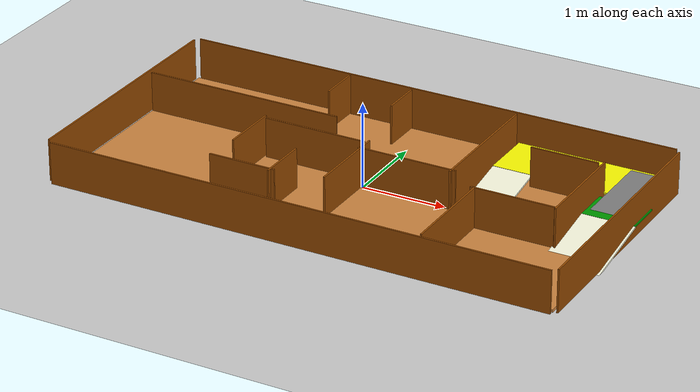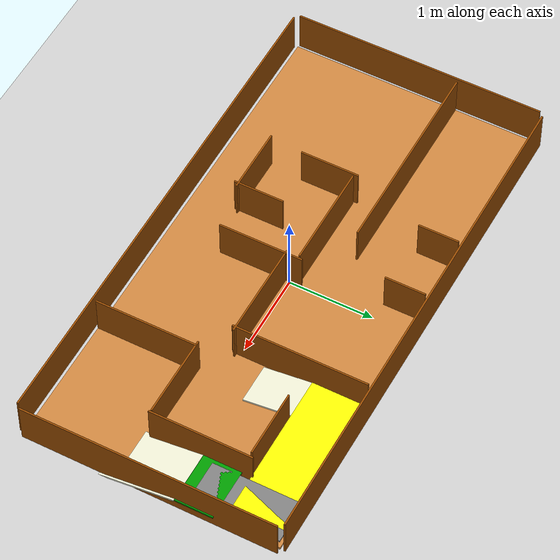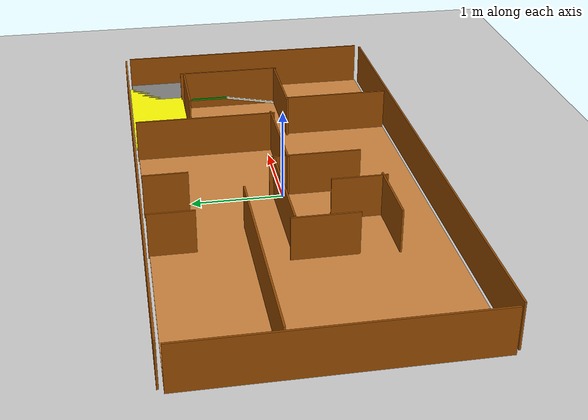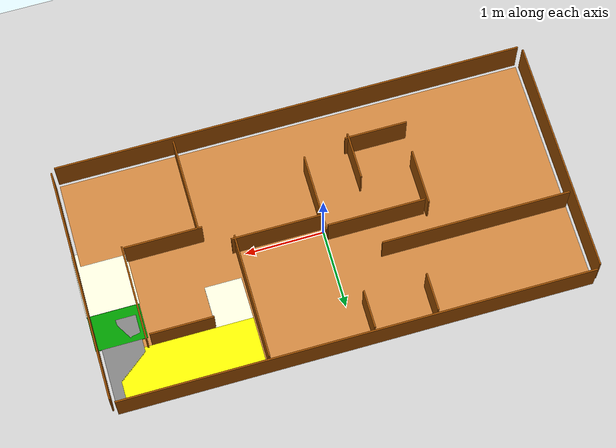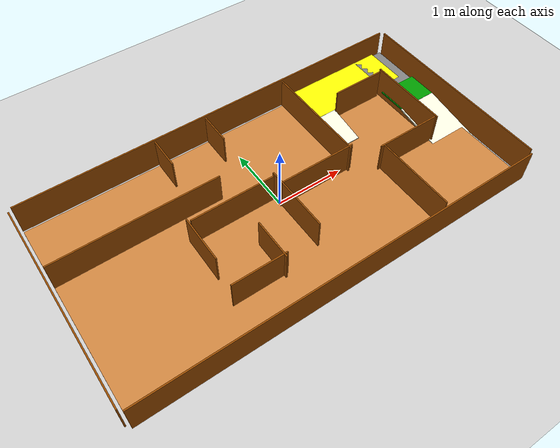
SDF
<sdf version='1.9'>
  <world name='gamefield'>
    <physics name='1ms' type='ignored'>
      <max_step_size>0.001</max_step_size>
      <real_time_factor>1</real_time_factor>
      <real_time_update_rate>1000</real_time_update_rate>
    </physics>
    <plugin name='ignition::gazebo::systems::Physics' filename='ignition-gazebo-physics-system'/>
    <plugin name='ignition::gazebo::systems::UserCommands' filename='ignition-gazebo-user-commands-system'/>
    <plugin name='ignition::gazebo::systems::SceneBroadcaster' filename='ignition-gazebo-scene-broadcaster-system'/>
    <plugin name='ignition::gazebo::systems::Imu' filename='ignition-gazebo-imu-system'/>
    <plugin name='ignition::gazebo::systems::Sensors' filename='ignition-gazebo-sensors-system'>
      <render_engine>ogre2</render_engine>
    </plugin>
    <plugin name='ignition::gazebo::systems::Contact' filename='ignition-gazebo-contact-system'/>
    <gui fullscreen='false'>
      <plugin name='3D View' filename='MinimalScene'>
        <ignition-gui>
          <title>3D View</title>
          <property type='bool' key='showTitleBar'>false</property>
          <property type='string' key='state'>docked</property>
        </ignition-gui>
        <engine>ogre2</engine>
        <scene>scene</scene>
        <ambient_light>0.4 0.4 0.4</ambient_light>
        <background_color>0.8 0.8 0.8</background_color>
        <camera_pose>-6 0 6 0 0.5 0</camera_pose>
        <camera_clip>
          <near>0.25</near>
          <far>25000</far>
        </camera_clip>
      </plugin>
      <plugin name='Entity context menu' filename='EntityContextMenuPlugin'>
        <ignition-gui>
          <property key='state' type='string'>floating</property>
          <property key='width' type='double'>5</property>
          <property key='height' type='double'>5</property>
          <property key='showTitleBar' type='bool'>false</property>
        </ignition-gui>
      </plugin>
      <plugin name='Scene Manager' filename='GzSceneManager'>
        <ignition-gui>
          <property key='resizable' type='bool'>false</property>
          <property key='width' type='double'>5</property>
          <property key='height' type='double'>5</property>
          <property key='state' type='string'>floating</property>
          <property key='showTitleBar' type='bool'>false</property>
        </ignition-gui>
      </plugin>
      <plugin name='Interactive view control' filename='InteractiveViewControl'>
        <ignition-gui>
          <property key='resizable' type='bool'>false</property>
          <property key='width' type='double'>5</property>
          <property key='height' type='double'>5</property>
          <property key='state' type='string'>floating</property>
          <property key='showTitleBar' type='bool'>false</property>
        </ignition-gui>
      </plugin>
      <plugin name='Camera Tracking' filename='CameraTracking'>
        <ignition-gui>
          <property key='resizable' type='bool'>false</property>
          <property key='width' type='double'>5</property>
          <property key='height' type='double'>5</property>
          <property key='state' type='string'>floating</property>
          <property key='showTitleBar' type='bool'>false</property>
        </ignition-gui>
      </plugin>
      <plugin name='Marker manager' filename='MarkerManager'>
        <ignition-gui>
          <property key='resizable' type='bool'>false</property>
          <property key='width' type='double'>5</property>
          <property key='height' type='double'>5</property>
          <property key='state' type='string'>floating</property>
          <property key='showTitleBar' type='bool'>false</property>
        </ignition-gui>
      </plugin>
      <plugin name='Select Entities' filename='SelectEntities'>
        <ignition-gui>
          <anchors target='Select entities'>
            <line own='right' target='right'/>
            <line own='top' target='top'/>
          </anchors>
          <property key='resizable' type='bool'>false</property>
          <property key='width' type='double'>5</property>
          <property key='height' type='double'>5</property>
          <property key='state' type='string'>floating</property>
          <property key='showTitleBar' type='bool'>false</property>
        </ignition-gui>
      </plugin>
      <plugin name='Visualization Capabilities' filename='VisualizationCapabilities'>
        <ignition-gui>
          <property key='resizable' type='bool'>false</property>
          <property key='width' type='double'>5</property>
          <property key='height' type='double'>5</property>
          <property key='state' type='string'>floating</property>
          <property key='showTitleBar' type='bool'>false</property>
        </ignition-gui>
      </plugin>
      <plugin name='Spawn Entities' filename='Spawn'>
        <ignition-gui>
          <anchors target='Select entities'>
            <line own='right' target='right'/>
            <line own='top' target='top'/>
          </anchors>
          <property key='resizable' type='bool'>false</property>
          <property key='width' type='double'>5</property>
          <property key='height' type='double'>5</property>
          <property key='state' type='string'>floating</property>
          <property key='showTitleBar' type='bool'>false</property>
        </ignition-gui>
      </plugin>
      <plugin name='World control' filename='WorldControl'>
        <ignition-gui>
          <title>World control</title>
          <property type='bool' key='showTitleBar'>false</property>
          <property type='bool' key='resizable'>false</property>
          <property type='double' key='height'>72</property>
          <property type='double' key='width'>121</property>
          <property type='double' key='z'>1</property>
          <property type='string' key='state'>floating</property>
          <anchors target='3D View'>
            <line own='left' target='left'/>
            <line own='bottom' target='bottom'/>
          </anchors>
        </ignition-gui>
        <play_pause>true</play_pause>
        <step>true</step>
        <start_paused>true</start_paused>
        <use_event>true</use_event>
      </plugin>
      <plugin name='World stats' filename='WorldStats'>
        <ignition-gui>
          <title>World stats</title>
          <property type='bool' key='showTitleBar'>false</property>
          <property type='bool' key='resizable'>false</property>
          <property type='double' key='height'>110</property>
          <property type='double' key='width'>290</property>
          <property type='double' key='z'>1</property>
          <property type='string' key='state'>floating</property>
          <anchors target='3D View'>
            <line own='right' target='right'/>
            <line own='bottom' target='bottom'/>
          </anchors>
        </ignition-gui>
        <sim_time>true</sim_time>
        <real_time>true</real_time>
        <real_time_factor>true</real_time_factor>
        <iterations>true</iterations>
      </plugin>
      <plugin name='Visualize Lidar' filename='VisualizeLidar'/>
      <plugin name='Shapes' filename='Shapes'>
        <ignition-gui>
          <property key='resizable' type='bool'>false</property>
          <property key='x' type='double'>0</property>
          <property key='y' type='double'>0</property>
          <property key='width' type='double'>250</property>
          <property key='height' type='double'>50</property>
          <property key='state' type='string'>floating</property>
          <property key='showTitleBar' type='bool'>false</property>
          <property key='cardBackground' type='string'>#666666</property>
        </ignition-gui>
      </plugin>
      <plugin name='Lights' filename='Lights'>
        <ignition-gui>
          <property key='resizable' type='bool'>false</property>
          <property key='x' type='double'>250</property>
          <property key='y' type='double'>0</property>
          <property key='width' type='double'>150</property>
          <property key='height' type='double'>50</property>
          <property key='state' type='string'>floating</property>
          <property key='showTitleBar' type='bool'>false</property>
          <property key='cardBackground' type='string'>#666666</property>
        </ignition-gui>
      </plugin>
      <plugin name='Transform control' filename='TransformControl'>
        <ignition-gui>
          <property key='resizable' type='bool'>false</property>
          <property key='x' type='double'>0</property>
          <property key='y' type='double'>50</property>
          <property key='width' type='double'>250</property>
          <property key='height' type='double'>50</property>
          <property key='state' type='string'>floating</property>
          <property key='showTitleBar' type='bool'>false</property>
          <property key='cardBackground' type='string'>#777777</property>
        </ignition-gui>
      </plugin>
      <plugin name='Screenshot' filename='Screenshot'>
        <ignition-gui>
          <property key='resizable' type='bool'>false</property>
          <property key='x' type='double'>250</property>
          <property key='y' type='double'>50</property>
          <property key='width' type='double'>50</property>
          <property key='height' type='double'>50</property>
          <property key='state' type='string'>floating</property>
          <property key='showTitleBar' type='bool'>false</property>
          <property key='cardBackground' type='string'>#777777</property>
        </ignition-gui>
      </plugin>
      <plugin name='VideoRecorder' filename='VideoRecorder'>
        <ignition-gui>
          <property key='resizable' type='bool'>false</property>
          <property key='x' type='double'>300</property>
          <property key='y' type='double'>50</property>
          <property key='width' type='double'>50</property>
          <property key='height' type='double'>50</property>
          <property key='state' type='string'>floating</property>
          <property key='showTitleBar' type='bool'>false</property>
          <property key='cardBackground' type='string'>#777777</property>
        </ignition-gui>
        <record_video>
          <use_sim_time>true</use_sim_time>
          <lockstep>false</lockstep>
          <bitrate>4000000</bitrate>
        </record_video>
      </plugin>
      <plugin name='Component inspector' filename='ComponentInspector'>
        <ignition-gui>
          <property type='string' key='state'>docked_collapsed</property>
        </ignition-gui>
      </plugin>
      <plugin name='Entity tree' filename='EntityTree'>
        <ignition-gui>
          <property type='string' key='state'>docked_collapsed</property>
        </ignition-gui>
      </plugin>
      <plugin name='View angle' filename='ViewAngle'>
        <ignition-gui>
          <property type='string' key='state'>docked_collapsed</property>
        </ignition-gui>
      </plugin>
    </gui>
    <gravity>0 0 -9.8</gravity>
    <magnetic_field>6e-06 2.3e-05 -4.2e-05</magnetic_field>
    <atmosphere type='adiabatic'/>
    <scene>
      <ambient>0.4 0.4 0.4 1</ambient>
      <background>0.7 0.7 0.7 1</background>
      <shadows>true</shadows>
    </scene>
    <model name='ground_plane'>
      <static>true</static>
      <link name='link'>
        <collision name='collision'>
          <geometry>
            <plane>
              <normal>0 0 1</normal>
              <size>1 1</size>
            </plane>
          </geometry>
          <surface>
            <friction>
              <ode/>
            </friction>
            <bounce/>
            <contact/>
          </surface>
        </collision>
        <visual name='visual'>
          <geometry>
            <plane>
              <normal>0 0 1</normal>
              <size>100 100</size>
            </plane>
          </geometry>
          <material>
            <ambient>0.8 0.8 0.8 1</ambient>
            <diffuse>0.8 0.8 0.8 1</diffuse>
            <specular>0.8 0.8 0.8 1</specular>
          </material>
        </visual>
        <pose>0 0 0 0 -0 0</pose>
        <inertial>
          <pose>0 0 0 0 -0 0</pose>
          <mass>1</mass>
          <inertia>
            <ixx>1</ixx>
            <ixy>0</ixy>
            <ixz>0</ixz>
            <iyy>1</iyy>
            <iyz>0</iyz>
            <izz>1</izz>
          </inertia>
        </inertial>
        <enable_wind>false</enable_wind>
      </link>
      <pose>0 0 0 0 -0 0</pose>
      <self_collide>false</self_collide>
    </model>

    <!-- Gamefield Model -->
    <model name="gamefield">
      <static>true</static>

      <!-- Base Floor -->
      <link name="floor">
        <pose>0 0 0 0 0 0</pose>
        <visual name="visual">
          <geometry>
            <box>
              <size>6.0 3.0 0.05</size>
            </box>
          </geometry>
          <material>
            <ambient>0.8 0.52 0.25 1</ambient>
            <diffuse>0.8 0.52 0.25 1</diffuse>
          </material>
        </visual>
        <collision name="collision">
          <geometry>
            <box>
              <size>6.0 3.0 0.05</size>
            </box>
          </geometry>
        </collision>
      </link>

      <!-- FRONT WALL -->
      <link name="wall_front">
        <pose>0 1.55 0.25 0 0 0</pose>
        <visual name="visual">
          <geometry>
            <box>
              <size>6.0 0.02 0.5</size>
            </box>
          </geometry>
          <material>
            <ambient>0.59 0.29 0.0 1</ambient>
            <diffuse>0.59 0.29 0.0 1</diffuse>
          </material>
        </visual>
        <collision name="collision">
          <geometry>
            <box>
              <size>6.0 0.02 0.5</size>
            </box>
          </geometry>
        </collision>
      </link>

      <!-- BACK WALL -->
      <link name="wall_back">
        <pose>0 -1.55 0.25 0 0 0</pose>
        <visual name="visual">
          <geometry>
            <box>
              <size>6.0 0.02 0.5</size>
            </box>
          </geometry>
          <material>
            <ambient>0.59 0.29 0.0 1</ambient>
            <diffuse>0.59 0.29 0.0 1</diffuse>
          </material>
        </visual>
        <collision name="collision">
          <geometry>
            <box>
              <size>6.0 0.02 0.5</size>
            </box>
          </geometry>
        </collision>
      </link>

      <!-- LEFT WALL -->
      <link name="wall_left">
        <pose>-3.05 0 0.25 0 0 0</pose>
        <visual name="visual">
          <geometry>
            <box>
              <size>0.02 3.0 0.5</size>
            </box>
          </geometry>
          <material>
            <ambient>0.59 0.29 0.0 1</ambient>
            <diffuse>0.59 0.29 0.0 1</diffuse>
          </material>
        </visual>
        <collision name="collision">
          <geometry>
            <box>
              <size>0.02 3.0 0.5</size>
            </box>
          </geometry>
        </collision>
      </link>

      <!-- RIGHT WALL -->
      <link name="wall_right">
        <pose>3.05 0 0.25 0 0 0</pose>
        <visual name="visual">
          <geometry>
            <box>
              <size>0.02 3.0 0.5</size>
            </box>
          </geometry>
          <material>
            <ambient>0.59 0.29 0.0 1</ambient>
            <diffuse>0.59 0.29 0.0 1</diffuse>
          </material>
        </visual>
        <collision name="collision">
          <geometry>
            <box>
              <size>0.02 3.0 0.5</size>
            </box>
          </geometry>
        </collision>
      </link>

      <!-- Partition Wall -->
      <link name="partition_wall">
        <pose>1.5 -0.899825 0.25 0 0 0</pose>
        <visual name="visual">
          <geometry>
            <box>
              <size>0.02 1.20035 0.5</size>
            </box>
          </geometry>
          <material>
            <ambient>0.59 0.29 0.0 1</ambient>
            <diffuse>0.59 0.29 0.0 1</diffuse>
          </material>
        </visual>
        <collision name="collision">
          <geometry>
            <box>
              <size>0.02 1.20035 0.5</size>
            </box>
          </geometry>
        </collision>
      </link>

      <!-- Vertical Leg -->
      <link name="partition_leg">
        <pose>1.94 -0.3 0.25 0 0 0</pose>
        <visual name="visual">
          <geometry>
            <box>
              <size>0.982165 0.02 0.5</size>
            </box>
          </geometry>
          <material>
            <ambient>0.59 0.29 0.0 1</ambient>
            <diffuse>0.59 0.29 0.0 1</diffuse>
          </material>
        </visual>
        <collision name="collision">
          <geometry>
            <box>
              <size>0.982165 0.02 0.5</size>
            </box>
          </geometry>
        </collision>
      </link>

      <!-- Ramp -->
      <link name="plywood_ramp">
        <pose>2.75 -0.42 0.01 0 0.1745 4.7124</pose>
        <visual name="visual">
          <geometry>
            <box>
              <size>1.5 0.667 0.02</size>
            </box>
          </geometry>
          <material>
            <ambient>0.96 0.96 0.86 1</ambient>
            <diffuse>0.96 0.96 0.86 1</diffuse>
          </material>
        </visual>
        <collision name="collision">
          <geometry>
            <box>
              <size>1.5 0.667 0.02</size>
            </box>
          </geometry>
        </collision>
      </link>

      <!-- Third Partition -->
      <link name="wall_partition_for_ramp">
        <pose>2.45 0.285 0.25 0 0 0</pose>
        <visual name="visual">
          <geometry>
            <box>
              <size>0.02 1.218133 0.5</size>
            </box>
          </geometry>
          <material>
            <ambient>0.59 0.29 0.0 1</ambient>
            <diffuse>0.59 0.29 0.0 1</diffuse>
          </material>
        </visual>
        <collision name="collision">
          <geometry>
            <box>
              <size>0.02 1.218133 0.5</size>
            </box>
          </geometry>
        </collision>
      </link>
      <!-- Grass platform -->
      <link name="grass_platform">
        <pose>2.75 0.544 0.14 0 0 0</pose>
        <visual name="visual">
          <geometry>
            <box>
              <size>0.65 0.448 0.02</size>
            </box>
          </geometry>
          <material>
            <ambient>0 0.6 0 1</ambient>
            <diffuse>0 0.6 0 1</diffuse>
          </material>
        </visual>
        <collision name="collision">
          <geometry>
            <box>
              <size>0.65 0.448 0.02</size>
            </box>
          </geometry>
        </collision>
      </link>
      <!-- Gravel platform -->
      <link name="gravel_platform">
        <pose>2.75 0.97 0.14 0 0 0</pose>
        <visual name="visual">
          <geometry>
            <box>
              <size>0.5 1.05 0.02</size>
            </box>
          </geometry>
          <material>
            <ambient>0.5 0.5 0.5 1</ambient>
            <diffuse>0.5 0.5 0.5 1</diffuse>
          </material>
        </visual>
        <collision name="collision">
          <geometry>
            <box>
              <size>0.5 1.05 0.02</size>
            </box>
          </geometry>
        </collision>
      </link>
      <!-- Sawdust platform -->
      <link name="sawdust_platform">
        <pose>2.0 1.2 0.14 0 0 0</pose>
        <visual name="visual">
          <geometry>
            <box>
              <size>1.733 0.648 0.02</size>
            </box>
          </geometry>
          <material>
            <ambient>1 1 0 1</ambient>
            <diffuse>1 1 0 1</diffuse>
          </material>
        </visual>
        <collision name="collision">
          <geometry>
            <box>
              <size>1.733 0.648 0.02</size>
            </box>
          </geometry>
        </collision>
      </link>
      <!-- Sawdust Partition -->
      <link name="sawdust_partition">
        <pose>2.0 0.85 0.25 0 0 0</pose>
        <visual name="visual">
          <geometry>
            <box>
              <size>0.8 0.02 0.5</size>
            </box>
          </geometry>
          <material>
            <ambient>0.59 0.29 0.0 1</ambient>
            <diffuse>0.59 0.29 0.0 1</diffuse>
          </material>
        </visual>
        <collision name="collision">
          <geometry>
            <box>
              <size>0.8 0.02 0.5</size>
            </box>
          </geometry>
        </collision>
      </link>

      <!-- 2nd Ramp Partition -->
      <link name="ramp_wall_two">
        <pose>1.1 0.71 0.25 0 0 0</pose>
        <visual name="visual">
          <geometry>
            <box>
              <size>0.02 1.6 0.5</size>
            </box>
          </geometry>
          <material>
            <ambient>0.59 0.29 0.0 1</ambient>
            <diffuse>0.59 0.29 0.0 1</diffuse>
          </material>
        </visual>
        <collision name="collision">
          <geometry>
            <box>
              <size>0.02 1.6 0.5</size>
            </box>
          </geometry>
        </collision>
      </link>

      <!-- Ramp2 -->
      <link name="plywood_ramp_two">
        <pose>1.37 0.6 0.088 0 0.1745 4.7124</pose>
        <visual name="visual">
          <geometry>
            <box>
              <size>0.6 0.47 0.02</size>
            </box>
          </geometry>
          <material>
            <ambient>0.96 0.96 0.86 1</ambient>
            <diffuse>0.96 0.96 0.86 1</diffuse>
          </material>
        </visual>
        <collision name="collision">
          <geometry>
            <box>
              <size>0.6 0.47 0.02</size>
            </box>
          </geometry>
        </collision>
      </link>

      <!-- Vertical Leg After Ramp -->
      <link name="partition_leg_two">
        <pose>0.56 -0.05 0.25 0 0 0</pose>
        <visual name="visual">
          <geometry>
            <box>
              <size>1.182 0.02 0.5</size>
            </box>
          </geometry>
          <material>
            <ambient>0.59 0.29 0.0 1</ambient>
            <diffuse>0.59 0.29 0.0 1</diffuse>
          </material>
        </visual>
        <collision name="collision">
          <geometry>
            <box>
              <size>1.182 0.02 0.5</size>
            </box>
          </geometry>
        </collision>
      </link>

      <!-- Deposit Area 1 -->
      <link name="deposit_one">
        <pose>-0.208 1.27 0.25 0 0 0</pose>
        <visual name="visual">
          <geometry>
            <box>
              <size>0.02 0.48 0.5</size>
            </box>
          </geometry>
          <material>
            <ambient>0.59 0.29 0.0 1</ambient>
            <diffuse>0.59 0.29 0.0 1</diffuse>
          </material>
        </visual>
        <collision name="collision">
          <geometry>
            <box>
              <size>0.02 0.48 0.5</size>
            </box>
          </geometry>
        </collision>
      </link>

      <!-- Deposit Area 2 -->
      <link name="deposit_two">
        <pose>-1.0 1.27 0.25 0 0 0</pose>
        <visual name="visual">
          <geometry>
            <box>
              <size>0.02 0.48 0.5</size>
            </box>
          </geometry>
          <material>
            <ambient>0.59 0.29 0.0 1</ambient>
            <diffuse>0.59 0.29 0.0 1</diffuse>
          </material>
        </visual>
        <collision name="collision">
          <geometry>
            <box>
              <size>0.02 0.48 0.5</size>
            </box>
          </geometry>
        </collision>
      </link>

      <!-- Depositing Area Vertical Leg Separation -->
      <link name="partition_depositing">
        <pose>-1.8 0.5 0.25 0 0 0</pose>
        <visual name="visual">
          <geometry>
            <box>
              <size>2.4 0.02 0.5</size>
            </box>
          </geometry>
          <material>
            <ambient>0.59 0.29 0.0 1</ambient>
            <diffuse>0.59 0.29 0.0 1</diffuse>
          </material>
        </visual>
        <collision name="collision">
          <geometry>
            <box>
              <size>2.4 0.02 0.5</size>
            </box>
          </geometry>
        </collision>
      </link>

      <!-- Top side of barrier -->
      <link name="top_barrier">
        <pose>0 -0.35 0.25 0 0 0</pose>
        <visual name="visual">
          <geometry>
            <box>
              <size>0.02 1.0 0.5</size>
            </box>
          </geometry>
          <material>
            <ambient>0.59 0.29 0.0 1</ambient>
            <diffuse>0.59 0.29 0.0 1</diffuse>
          </material>
        </visual>
        <collision name="collision">
          <geometry>
            <box>
              <size>0.02 1.0 0.5</size>
            </box>
          </geometry>
        </collision>
      </link>

      <!-- Far Left side of barrier -->
      <link name="far_left_barrier">
        <pose>-0.65 0.1 0.25 0 0 0</pose>
        <visual name="visual">
          <geometry>
            <box>
              <size>1.236 0.02 0.5</size>
            </box>
          </geometry>
          <material>
            <ambient>0.59 0.29 0.0 1</ambient>
            <diffuse>0.59 0.29 0.0 1</diffuse>
          </material>
        </visual>
        <collision name="collision">
          <geometry>
            <box>
              <size>1.236 0.02 0.5</size>
            </box>
          </geometry>
        </collision>
      </link>

      <!-- Bottom side of barrier -->
      <link name="bottom_barrier">
        <pose>-1.3 -0.2 0.25 0 0 0</pose>
        <visual name="visual">
          <geometry>
            <box>
              <size>0.02 0.7 0.5</size>
            </box>
          </geometry>
          <material>
            <ambient>0.59 0.29 0.0 1</ambient>
            <diffuse>0.59 0.29 0.0 1</diffuse>
          </material>
        </visual>
        <collision name="collision">
          <geometry>
            <box>
              <size>0.02 0.7 0.5</size>
            </box>
          </geometry>
        </collision>
      </link>

      <!-- Lower Top side of barrier -->
      <link name="lower_top_barrier">
        <pose>-0.6 -0.7 0.25 0 0 0</pose>
        <visual name="visual">
          <geometry>
            <box>
              <size>0.02 0.6 0.5</size>
            </box>
          </geometry>
          <material>
            <ambient>0.59 0.29 0.0 1</ambient>
            <diffuse>0.59 0.29 0.0 1</diffuse>
          </material>
        </visual>
        <collision name="collision">
          <geometry>
            <box>
              <size>0.02 0.6 0.5</size>
            </box>
          </geometry>
        </collision>
      </link>

      <!-- Near Left side of barrier -->
      <link name="near_left_barrier">
        <pose>-0.95 -0.95 0.25 0 0 0</pose>
        <visual name="visual">
          <geometry>
            <box>
              <size>0.8 0.02 0.5</size>
            </box>
          </geometry>
          <material>
            <ambient>0.59 0.29 0.0 1</ambient>
            <diffuse>0.59 0.29 0.0 1</diffuse>
          </material>
        </visual>
        <collision name="collision">
          <geometry>
            <box>
              <size>0.8 0.02 0.5</size>
            </box>
          </geometry>
        </collision>
      </link>

    </model>

    <light name='sun' type='directional'>
      <pose>0 0 10 0 -0 0</pose>
      <cast_shadows>true</cast_shadows>
      <intensity>1</intensity>
      <direction>-0.5 0.1 -0.9</direction>
      <diffuse>0.8 0.8 0.8 1</diffuse>
      <specular>0.2 0.2 0.2 1</specular>
      <attenuation>
        <range>1000</range>
        <linear>0.01</linear>
        <constant>0.90000000000000002</constant>
        <quadratic>0.001</quadratic>
      </attenuation>
      <spot>
        <inner_angle>0</inner_angle>
        <outer_angle>0</outer_angle>
        <falloff>0</falloff>
      </spot>
    </light>
  </world>
</sdf>
